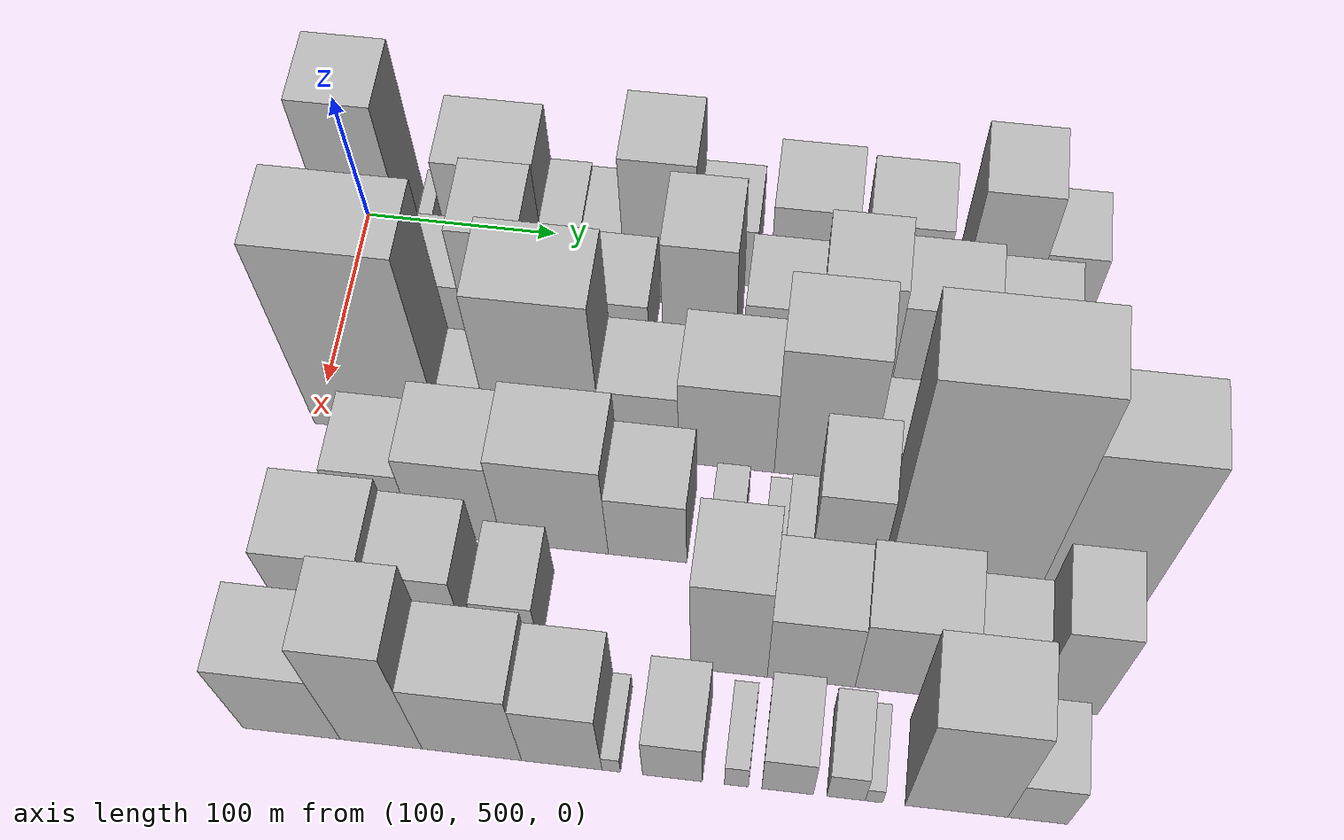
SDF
<sdf version="1.6">
 <world name="default">
  <model name="building_38">
   <static>1</static>
   <pose>100.0000 505.5566 0 0.000000 0.000000 0.000000</pose>
   <link name="link">
    <pose>0 0 61.50 0 0 0</pose>
    <collision name="collision"><geometry><box><size>40.0000 40.6864 123.0000</size></box></geometry></collision>
    <visual name="visual">
     <cast_shadows>0</cast_shadows>
     <geometry><box><size>40.0000 40.6864 123.0000</size></box></geometry>
     <material>
      <script>
       <uri>model://HANNAS_wall/materials/scripts</uri>
       <uri>model://HANNAS_wall/materials/textures</uri>
       <name>vrc/HANNAS_wall</name>
      </script>
     </material>
    </visual>
   </link>
  </model>
  <model name="building_39">
   <static>1</static>
   <pose>100.0000 534.6174 0 0.000000 0.000000 0.000000</pose>
   <link name="link">
    <pose>0 0 9.00 0 0 0</pose>
    <collision name="collision"><geometry><box><size>40.0000 7.4353 18.0000</size></box></geometry></collision>
    <visual name="visual">
     <cast_shadows>0</cast_shadows>
     <geometry><box><size>40.0000 7.4353 18.0000</size></box></geometry>
     <material>
      <script>
       <uri>model://HANNAS_wall/materials/scripts</uri>
       <uri>model://HANNAS_wall/materials/textures</uri>
       <name>vrc/HANNAS_wall</name>
      </script>
     </material>
    </visual>
   </link>
  </model>
  <model name="building_40">
   <static>1</static>
   <pose>100.0000 572.8481 0 0.000000 0.000000 0.000000</pose>
   <link name="link">
    <pose>0 0 42.00 0 0 0</pose>
    <collision name="collision"><geometry><box><size>40.0000 49.0260 84.0000</size></box></geometry></collision>
    <visual name="visual">
     <cast_shadows>0</cast_shadows>
     <geometry><box><size>40.0000 49.0260 84.0000</size></box></geometry>
     <material>
      <script>
       <uri>model://HANNAS_wall/materials/scripts</uri>
       <uri>model://HANNAS_wall/materials/textures</uri>
       <name>vrc/HANNAS_wall</name>
      </script>
     </material>
    </visual>
   </link>
  </model>
  <model name="building_41">
   <static>1</static>
   <pose>100.0000 608.1299 0 0.000000 0.000000 0.000000</pose>
   <link name="link">
    <pose>0 0 19.50 0 0 0</pose>
    <collision name="collision"><geometry><box><size>40.0000 21.5375 39.0000</size></box></geometry></collision>
    <visual name="visual">
     <cast_shadows>0</cast_shadows>
     <geometry><box><size>40.0000 21.5375 39.0000</size></box></geometry>
     <material>
      <script>
       <uri>model://HANNAS_wall/materials/scripts</uri>
       <uri>model://HANNAS_wall/materials/textures</uri>
       <name>vrc/HANNAS_wall</name>
      </script>
     </material>
    </visual>
   </link>
  </model>
  <model name="building_42">
   <static>1</static>
   <pose>100.0000 629.2807 0 0.000000 0.000000 0.000000</pose>
   <link name="link">
    <pose>0 0 18.00 0 0 0</pose>
    <collision name="collision"><geometry><box><size>40.0000 20.7642 36.0000</size></box></geometry></collision>
    <visual name="visual">
     <cast_shadows>0</cast_shadows>
     <geometry><box><size>40.0000 20.7642 36.0000</size></box></geometry>
     <material>
      <script>
       <uri>model://HANNAS_wall/materials/scripts</uri>
       <uri>model://HANNAS_wall/materials/textures</uri>
       <name>vrc/HANNAS_wall</name>
      </script>
     </material>
    </visual>
   </link>
  </model>
  <model name="building_43">
   <static>1</static>
   <pose>100.0000 658.6435 0 0.000000 0.000000 0.000000</pose>
   <link name="link">
    <pose>0 0 51.00 0 0 0</pose>
    <collision name="collision"><geometry><box><size>40.0000 37.9613 102.0000</size></box></geometry></collision>
    <visual name="visual">
     <cast_shadows>0</cast_shadows>
     <geometry><box><size>40.0000 37.9613 102.0000</size></box></geometry>
     <material>
      <script>
       <uri>model://HANNAS_wall/materials/scripts</uri>
       <uri>model://HANNAS_wall/materials/textures</uri>
       <name>vrc/HANNAS_wall</name>
      </script>
     </material>
    </visual>
   </link>
  </model>
  <model name="building_44">
   <static>1</static>
   <pose>100.0000 692.8332 0 0.000000 0.000000 0.000000</pose>
   <link name="link">
    <pose>0 0 25.50 0 0 0</pose>
    <collision name="collision"><geometry><box><size>40.0000 30.4181 51.0000</size></box></geometry></collision>
    <visual name="visual">
     <cast_shadows>0</cast_shadows>
     <geometry><box><size>40.0000 30.4181 51.0000</size></box></geometry>
     <material>
      <script>
       <uri>model://HANNAS_wall/materials/scripts</uri>
       <uri>model://HANNAS_wall/materials/textures</uri>
       <name>vrc/HANNAS_wall</name>
      </script>
     </material>
    </visual>
   </link>
  </model>
  <model name="building_45">
   <static>1</static>
   <pose>100.0000 735.8056 0 0.000000 0.000000 0.000000</pose>
   <link name="link">
    <pose>0 0 37.50 0 0 0</pose>
    <collision name="collision"><geometry><box><size>40.0000 41.5267 75.0000</size></box></geometry></collision>
    <visual name="visual">
     <cast_shadows>0</cast_shadows>
     <geometry><box><size>40.0000 41.5267 75.0000</size></box></geometry>
     <material>
      <script>
       <uri>model://HANNAS_wall/materials/scripts</uri>
       <uri>model://HANNAS_wall/materials/textures</uri>
       <name>vrc/HANNAS_wall</name>
      </script>
     </material>
    </visual>
   </link>
  </model>
  <model name="building_46">
   <static>1</static>
   <pose>100.0000 781.8442 0 0.000000 0.000000 0.000000</pose>
   <link name="link">
    <pose>0 0 34.50 0 0 0</pose>
    <collision name="collision"><geometry><box><size>40.0000 40.5506 69.0000</size></box></geometry></collision>
    <visual name="visual">
     <cast_shadows>0</cast_shadows>
     <geometry><box><size>40.0000 40.5506 69.0000</size></box></geometry>
     <material>
      <script>
       <uri>model://HANNAS_wall/materials/scripts</uri>
       <uri>model://HANNAS_wall/materials/textures</uri>
       <name>vrc/HANNAS_wall</name>
      </script>
     </material>
    </visual>
   </link>
  </model>
  <model name="building_47">
   <static>1</static>
   <pose>100.0000 830.5040 0 0.000000 0.000000 0.000000</pose>
   <link name="link">
    <pose>0 0 52.50 0 0 0</pose>
    <collision name="collision"><geometry><box><size>40.0000 36.7689 105.0000</size></box></geometry></collision>
    <visual name="visual">
     <cast_shadows>0</cast_shadows>
     <geometry><box><size>40.0000 36.7689 105.0000</size></box></geometry>
     <material>
      <script>
       <uri>model://HANNAS_wall/materials/scripts</uri>
       <uri>model://HANNAS_wall/materials/textures</uri>
       <name>vrc/HANNAS_wall</name>
      </script>
     </material>
    </visual>
   </link>
  </model>
  <model name="building_48">
   <static>1</static>
   <pose>100.0000 863.8424 0 0.000000 0.000000 0.000000</pose>
   <link name="link">
    <pose>0 0 28.50 0 0 0</pose>
    <collision name="collision"><geometry><box><size>40.0000 29.9080 57.0000</size></box></geometry></collision>
    <visual name="visual">
     <cast_shadows>0</cast_shadows>
     <geometry><box><size>40.0000 29.9080 57.0000</size></box></geometry>
     <material>
      <script>
       <uri>model://HANNAS_wall/materials/scripts</uri>
       <uri>model://HANNAS_wall/materials/textures</uri>
       <name>vrc/HANNAS_wall</name>
      </script>
     </material>
    </visual>
   </link>
  </model>
  <model name="building_91">
   <static>1</static>
   <pose>152.0000 523.9615 0 0.000000 0.000000 0.000000</pose>
   <link name="link">
    <pose>0 0 22.50 0 0 0</pose>
    <collision name="collision"><geometry><box><size>40.0000 24.2843 45.0000</size></box></geometry></collision>
    <visual name="visual">
     <cast_shadows>0</cast_shadows>
     <geometry><box><size>40.0000 24.2843 45.0000</size></box></geometry>
     <material>
      <script>
       <uri>model://HANNAS_wall/materials/scripts</uri>
       <uri>model://HANNAS_wall/materials/textures</uri>
       <name>vrc/HANNAS_wall</name>
      </script>
     </material>
    </visual>
   </link>
  </model>
  <model name="building_92">
   <static>1</static>
   <pose>152.0000 551.9967 0 0.000000 0.000000 0.000000</pose>
   <link name="link">
    <pose>0 0 28.50 0 0 0</pose>
    <collision name="collision"><geometry><box><size>40.0000 31.7861 57.0000</size></box></geometry></collision>
    <visual name="visual">
     <cast_shadows>0</cast_shadows>
     <geometry><box><size>40.0000 31.7861 57.0000</size></box></geometry>
     <material>
      <script>
       <uri>model://HANNAS_wall/materials/scripts</uri>
       <uri>model://HANNAS_wall/materials/textures</uri>
       <name>vrc/HANNAS_wall</name>
      </script>
     </material>
    </visual>
   </link>
  </model>
  <model name="building_93">
   <static>1</static>
   <pose>152.0000 584.6896 0 0.000000 0.000000 0.000000</pose>
   <link name="link">
    <pose>0 0 54.00 0 0 0</pose>
    <collision name="collision"><geometry><box><size>40.0000 33.5998 108.0000</size></box></geometry></collision>
    <visual name="visual">
     <cast_shadows>0</cast_shadows>
     <geometry><box><size>40.0000 33.5998 108.0000</size></box></geometry>
     <material>
      <script>
       <uri>model://HANNAS_wall/materials/scripts</uri>
       <uri>model://HANNAS_wall/materials/textures</uri>
       <name>vrc/HANNAS_wall</name>
      </script>
     </material>
    </visual>
   </link>
  </model>
  <model name="building_94">
   <static>1</static>
   <pose>152.0000 616.1269 0 0.000000 0.000000 0.000000</pose>
   <link name="link">
    <pose>0 0 25.50 0 0 0</pose>
    <collision name="collision"><geometry><box><size>40.0000 29.2748 51.0000</size></box></geometry></collision>
    <visual name="visual">
     <cast_shadows>0</cast_shadows>
     <geometry><box><size>40.0000 29.2748 51.0000</size></box></geometry>
     <material>
      <script>
       <uri>model://HANNAS_wall/materials/scripts</uri>
       <uri>model://HANNAS_wall/materials/textures</uri>
       <name>vrc/HANNAS_wall</name>
      </script>
     </material>
    </visual>
   </link>
  </model>
  <model name="building_95">
   <static>1</static>
   <pose>152.0000 645.3666 0 0.000000 0.000000 0.000000</pose>
   <link name="link">
    <pose>0 0 28.50 0 0 0</pose>
    <collision name="collision"><geometry><box><size>40.0000 29.2047 57.0000</size></box></geometry></collision>
    <visual name="visual">
     <cast_shadows>0</cast_shadows>
     <geometry><box><size>40.0000 29.2047 57.0000</size></box></geometry>
     <material>
      <script>
       <uri>model://HANNAS_wall/materials/scripts</uri>
       <uri>model://HANNAS_wall/materials/textures</uri>
       <name>vrc/HANNAS_wall</name>
      </script>
     </material>
    </visual>
   </link>
  </model>
  <model name="building_96">
   <static>1</static>
   <pose>152.0000 684.8823 0 0.000000 0.000000 0.000000</pose>
   <link name="link">
    <pose>0 0 57.00 0 0 0</pose>
    <collision name="collision"><geometry><box><size>40.0000 35.8268 114.0000</size></box></geometry></collision>
    <visual name="visual">
     <cast_shadows>0</cast_shadows>
     <geometry><box><size>40.0000 35.8268 114.0000</size></box></geometry>
     <material>
      <script>
       <uri>model://HANNAS_wall/materials/scripts</uri>
       <uri>model://HANNAS_wall/materials/textures</uri>
       <name>vrc/HANNAS_wall</name>
      </script>
     </material>
    </visual>
   </link>
  </model>
  <model name="building_97">
   <static>1</static>
   <pose>152.0000 724.7681 0 0.000000 0.000000 0.000000</pose>
   <link name="link">
    <pose>0 0 34.50 0 0 0</pose>
    <collision name="collision"><geometry><box><size>40.0000 35.9448 69.0000</size></box></geometry></collision>
    <visual name="visual">
     <cast_shadows>0</cast_shadows>
     <geometry><box><size>40.0000 35.9448 69.0000</size></box></geometry>
     <material>
      <script>
       <uri>model://HANNAS_wall/materials/scripts</uri>
       <uri>model://HANNAS_wall/materials/textures</uri>
       <name>vrc/HANNAS_wall</name>
      </script>
     </material>
    </visual>
   </link>
  </model>
  <model name="building_98">
   <static>1</static>
   <pose>152.0000 761.8422 0 0.000000 0.000000 0.000000</pose>
   <link name="link">
    <pose>0 0 48.00 0 0 0</pose>
    <collision name="collision"><geometry><box><size>40.0000 38.2033 96.0000</size></box></geometry></collision>
    <visual name="visual">
     <cast_shadows>0</cast_shadows>
     <geometry><box><size>40.0000 38.2033 96.0000</size></box></geometry>
     <material>
      <script>
       <uri>model://HANNAS_wall/materials/scripts</uri>
       <uri>model://HANNAS_wall/materials/textures</uri>
       <name>vrc/HANNAS_wall</name>
      </script>
     </material>
    </visual>
   </link>
  </model>
  <model name="building_99">
   <static>1</static>
   <pose>152.0000 803.0215 0 0.000000 0.000000 0.000000</pose>
   <link name="link">
    <pose>0 0 40.50 0 0 0</pose>
    <collision name="collision"><geometry><box><size>40.0000 44.1552 81.0000</size></box></geometry></collision>
    <visual name="visual">
     <cast_shadows>0</cast_shadows>
     <geometry><box><size>40.0000 44.1552 81.0000</size></box></geometry>
     <material>
      <script>
       <uri>model://HANNAS_wall/materials/scripts</uri>
       <uri>model://HANNAS_wall/materials/textures</uri>
       <name>vrc/HANNAS_wall</name>
      </script>
     </material>
    </visual>
   </link>
  </model>
  <model name="building_100">
   <static>1</static>
   <pose>152.0000 844.2013 0 0.000000 0.000000 0.000000</pose>
   <link name="link">
    <pose>0 0 36.00 0 0 0</pose>
    <collision name="collision"><geometry><box><size>40.0000 38.2045 72.0000</size></box></geometry></collision>
    <visual name="visual">
     <cast_shadows>0</cast_shadows>
     <geometry><box><size>40.0000 38.2045 72.0000</size></box></geometry>
     <material>
      <script>
       <uri>model://HANNAS_wall/materials/scripts</uri>
       <uri>model://HANNAS_wall/materials/textures</uri>
       <name>vrc/HANNAS_wall</name>
      </script>
     </material>
    </visual>
   </link>
  </model>
  <model name="building_145">
   <static>1</static>
   <pose>204.0000 531.2300 0 0.000000 0.000000 0.000000</pose>
   <link name="link">
    <pose>0 0 82.50 0 0 0</pose>
    <collision name="collision"><geometry><box><size>40.0000 64.6209 165.0000</size></box></geometry></collision>
    <visual name="visual">
     <cast_shadows>0</cast_shadows>
     <geometry><box><size>40.0000 64.6209 165.0000</size></box></geometry>
     <material>
      <script>
       <uri>model://HANNAS_wall/materials/scripts</uri>
       <uri>model://HANNAS_wall/materials/textures</uri>
       <name>vrc/HANNAS_wall</name>
      </script>
     </material>
    </visual>
   </link>
  </model>
  <model name="building_146">
   <static>1</static>
   <pose>204.0000 573.9318 0 0.000000 0.000000 0.000000</pose>
   <link name="link">
    <pose>0 0 19.50 0 0 0</pose>
    <collision name="collision"><geometry><box><size>40.0000 20.7826 39.0000</size></box></geometry></collision>
    <visual name="visual">
     <cast_shadows>0</cast_shadows>
     <geometry><box><size>40.0000 20.7826 39.0000</size></box></geometry>
     <material>
      <script>
       <uri>model://HANNAS_wall/materials/scripts</uri>
       <uri>model://HANNAS_wall/materials/textures</uri>
       <name>vrc/HANNAS_wall</name>
      </script>
     </material>
    </visual>
   </link>
  </model>
  <model name="building_147">
   <static>1</static>
   <pose>204.0000 615.8243 0 0.000000 0.000000 0.000000</pose>
   <link name="link">
    <pose>0 0 70.50 0 0 0</pose>
    <collision name="collision"><geometry><box><size>40.0000 55.0024 141.0000</size></box></geometry></collision>
    <visual name="visual">
     <cast_shadows>0</cast_shadows>
     <geometry><box><size>40.0000 55.0024 141.0000</size></box></geometry>
     <material>
      <script>
       <uri>model://HANNAS_wall/materials/scripts</uri>
       <uri>model://HANNAS_wall/materials/textures</uri>
       <name>vrc/HANNAS_wall</name>
      </script>
     </material>
    </visual>
   </link>
  </model>
  <model name="building_148">
   <static>1</static>
   <pose>204.0000 662.1297 0 0.000000 0.000000 0.000000</pose>
   <link name="link">
    <pose>0 0 33.00 0 0 0</pose>
    <collision name="collision"><geometry><box><size>40.0000 37.6084 66.0000</size></box></geometry></collision>
    <visual name="visual">
     <cast_shadows>0</cast_shadows>
     <geometry><box><size>40.0000 37.6084 66.0000</size></box></geometry>
     <material>
      <script>
       <uri>model://HANNAS_wall/materials/scripts</uri>
       <uri>model://HANNAS_wall/materials/textures</uri>
       <name>vrc/HANNAS_wall</name>
      </script>
     </material>
    </visual>
   </link>
  </model>
  <model name="building_149">
   <static>1</static>
   <pose>204.0000 704.2894 0 0.000000 0.000000 0.000000</pose>
   <link name="link">
    <pose>0 0 40.50 0 0 0</pose>
    <collision name="collision"><geometry><box><size>40.0000 46.7109 81.0000</size></box></geometry></collision>
    <visual name="visual">
     <cast_shadows>0</cast_shadows>
     <geometry><box><size>40.0000 46.7109 81.0000</size></box></geometry>
     <material>
      <script>
       <uri>model://HANNAS_wall/materials/scripts</uri>
       <uri>model://HANNAS_wall/materials/textures</uri>
       <name>vrc/HANNAS_wall</name>
      </script>
     </material>
    </visual>
   </link>
  </model>
  <model name="building_150">
   <static>1</static>
   <pose>204.0000 751.0916 0 0.000000 0.000000 0.000000</pose>
   <link name="link">
    <pose>0 0 61.50 0 0 0</pose>
    <collision name="collision"><geometry><box><size>40.0000 46.8937 123.0000</size></box></geometry></collision>
    <visual name="visual">
     <cast_shadows>0</cast_shadows>
     <geometry><box><size>40.0000 46.8937 123.0000</size></box></geometry>
     <material>
      <script>
       <uri>model://HANNAS_wall/materials/scripts</uri>
       <uri>model://HANNAS_wall/materials/textures</uri>
       <name>vrc/HANNAS_wall</name>
      </script>
     </material>
    </visual>
   </link>
  </model>
  <model name="building_151">
   <static>1</static>
   <pose>204.0000 783.8099 0 0.000000 0.000000 0.000000</pose>
   <link name="link">
    <pose>0 0 18.00 0 0 0</pose>
    <collision name="collision"><geometry><box><size>40.0000 18.5428 36.0000</size></box></geometry></collision>
    <visual name="visual">
     <cast_shadows>0</cast_shadows>
     <geometry><box><size>40.0000 18.5428 36.0000</size></box></geometry>
     <material>
      <script>
       <uri>model://HANNAS_wall/materials/scripts</uri>
       <uri>model://HANNAS_wall/materials/textures</uri>
       <name>vrc/HANNAS_wall</name>
      </script>
     </material>
    </visual>
   </link>
  </model>
  <model name="building_152">
   <static>1</static>
   <pose>204.0000 814.6638 0 0.000000 0.000000 0.000000</pose>
   <link name="link">
    <pose>0 0 37.50 0 0 0</pose>
    <collision name="collision"><geometry><box><size>40.0000 43.1650 75.0000</size></box></geometry></collision>
    <visual name="visual">
     <cast_shadows>0</cast_shadows>
     <geometry><box><size>40.0000 43.1650 75.0000</size></box></geometry>
     <material>
      <script>
       <uri>model://HANNAS_wall/materials/scripts</uri>
       <uri>model://HANNAS_wall/materials/textures</uri>
       <name>vrc/HANNAS_wall</name>
      </script>
     </material>
    </visual>
   </link>
  </model>
  <model name="building_153">
   <static>1</static>
   <pose>204.0000 856.3323 0 0.000000 0.000000 0.000000</pose>
   <link name="link">
    <pose>0 0 54.00 0 0 0</pose>
    <collision name="collision"><geometry><box><size>40.0000 40.1720 108.0000</size></box></geometry></collision>
    <visual name="visual">
     <cast_shadows>0</cast_shadows>
     <geometry><box><size>40.0000 40.1720 108.0000</size></box></geometry>
     <material>
      <script>
       <uri>model://HANNAS_wall/materials/scripts</uri>
       <uri>model://HANNAS_wall/materials/textures</uri>
       <name>vrc/HANNAS_wall</name>
      </script>
     </material>
    </visual>
   </link>
  </model>
  <model name="building_191">
   <static>1</static>
   <pose>256.0000 541.9744 0 0.000000 0.000000 0.000000</pose>
   <link name="link">
    <pose>0 0 31.50 0 0 0</pose>
    <collision name="collision"><geometry><box><size>40.0000 35.4928 63.0000</size></box></geometry></collision>
    <visual name="visual">
     <cast_shadows>0</cast_shadows>
     <geometry><box><size>40.0000 35.4928 63.0000</size></box></geometry>
     <material>
      <script>
       <uri>model://HANNAS_wall/materials/scripts</uri>
       <uri>model://HANNAS_wall/materials/textures</uri>
       <name>vrc/HANNAS_wall</name>
      </script>
     </material>
    </visual>
   </link>
  </model>
  <model name="building_192">
   <static>1</static>
   <pose>256.0000 580.8543 0 0.000000 0.000000 0.000000</pose>
   <link name="link">
    <pose>0 0 40.50 0 0 0</pose>
    <collision name="collision"><geometry><box><size>40.0000 42.2671 81.0000</size></box></geometry></collision>
    <visual name="visual">
     <cast_shadows>0</cast_shadows>
     <geometry><box><size>40.0000 42.2671 81.0000</size></box></geometry>
     <material>
      <script>
       <uri>model://HANNAS_wall/materials/scripts</uri>
       <uri>model://HANNAS_wall/materials/textures</uri>
       <name>vrc/HANNAS_wall</name>
      </script>
     </material>
    </visual>
   </link>
  </model>
  <model name="building_193">
   <static>1</static>
   <pose>256.0000 627.6849 0 0.000000 0.000000 0.000000</pose>
   <link name="link">
    <pose>0 0 45.00 0 0 0</pose>
    <collision name="collision"><geometry><box><size>40.0000 51.3941 90.0000</size></box></geometry></collision>
    <visual name="visual">
     <cast_shadows>0</cast_shadows>
     <geometry><box><size>40.0000 51.3941 90.0000</size></box></geometry>
     <material>
      <script>
       <uri>model://HANNAS_wall/materials/scripts</uri>
       <uri>model://HANNAS_wall/materials/textures</uri>
       <name>vrc/HANNAS_wall</name>
      </script>
     </material>
    </visual>
   </link>
  </model>
  <model name="building_194">
   <static>1</static>
   <pose>256.0000 672.2578 0 0.000000 0.000000 0.000000</pose>
   <link name="link">
    <pose>0 0 31.50 0 0 0</pose>
    <collision name="collision"><geometry><box><size>40.0000 37.7517 63.0000</size></box></geometry></collision>
    <visual name="visual">
     <cast_shadows>0</cast_shadows>
     <geometry><box><size>40.0000 37.7517 63.0000</size></box></geometry>
     <material>
      <script>
       <uri>model://HANNAS_wall/materials/scripts</uri>
       <uri>model://HANNAS_wall/materials/textures</uri>
       <name>vrc/HANNAS_wall</name>
      </script>
     </material>
    </visual>
   </link>
  </model>
  <model name="building_195">
   <static>1</static>
   <pose>256.0000 709.0108 0 0.000000 0.000000 0.000000</pose>
   <link name="link">
    <pose>0 0 15.00 0 0 0</pose>
    <collision name="collision"><geometry><box><size>40.0000 15.7543 30.0000</size></box></geometry></collision>
    <visual name="visual">
     <cast_shadows>0</cast_shadows>
     <geometry><box><size>40.0000 15.7543 30.0000</size></box></geometry>
     <material>
      <script>
       <uri>model://HANNAS_wall/materials/scripts</uri>
       <uri>model://HANNAS_wall/materials/textures</uri>
       <name>vrc/HANNAS_wall</name>
      </script>
     </material>
    </visual>
   </link>
  </model>
  <model name="building_196">
   <static>1</static>
   <pose>256.0000 731.9410 0 0.000000 0.000000 0.000000</pose>
   <link name="link">
    <pose>0 0 10.50 0 0 0</pose>
    <collision name="collision"><geometry><box><size>40.0000 10.1059 21.0000</size></box></geometry></collision>
    <visual name="visual">
     <cast_shadows>0</cast_shadows>
     <geometry><box><size>40.0000 10.1059 21.0000</size></box></geometry>
     <material>
      <script>
       <uri>model://HANNAS_wall/materials/scripts</uri>
       <uri>model://HANNAS_wall/materials/textures</uri>
       <name>vrc/HANNAS_wall</name>
      </script>
     </material>
    </visual>
   </link>
  </model>
  <model name="building_197">
   <static>1</static>
   <pose>256.0000 743.4361 0 0.000000 0.000000 0.000000</pose>
   <link name="link">
    <pose>0 0 13.50 0 0 0</pose>
    <collision name="collision"><geometry><box><size>40.0000 12.8843 27.0000</size></box></geometry></collision>
    <visual name="visual">
     <cast_shadows>0</cast_shadows>
     <geometry><box><size>40.0000 12.8843 27.0000</size></box></geometry>
     <material>
      <script>
       <uri>model://HANNAS_wall/materials/scripts</uri>
       <uri>model://HANNAS_wall/materials/textures</uri>
       <name>vrc/HANNAS_wall</name>
      </script>
     </material>
    </visual>
   </link>
  </model>
  <model name="building_198">
   <static>1</static>
   <pose>256.0000 766.2232 0 0.000000 0.000000 0.000000</pose>
   <link name="link">
    <pose>0 0 46.50 0 0 0</pose>
    <collision name="collision"><geometry><box><size>40.0000 32.6898 93.0000</size></box></geometry></collision>
    <visual name="visual">
     <cast_shadows>0</cast_shadows>
     <geometry><box><size>40.0000 32.6898 93.0000</size></box></geometry>
     <material>
      <script>
       <uri>model://HANNAS_wall/materials/scripts</uri>
       <uri>model://HANNAS_wall/materials/textures</uri>
       <name>vrc/HANNAS_wall</name>
      </script>
     </material>
    </visual>
   </link>
  </model>
  <model name="building_199">
   <static>1</static>
   <pose>256.0000 820.8286 0 0.000000 0.000000 0.000000</pose>
   <link name="link">
    <pose>0 0 103.50 0 0 0</pose>
    <collision name="collision"><geometry><box><size>40.0000 70.5211 207.0000</size></box></geometry></collision>
    <visual name="visual">
     <cast_shadows>0</cast_shadows>
     <geometry><box><size>40.0000 70.5211 207.0000</size></box></geometry>
     <material>
      <script>
       <uri>model://HANNAS_wall/materials/scripts</uri>
       <uri>model://HANNAS_wall/materials/textures</uri>
       <name>vrc/HANNAS_wall</name>
      </script>
     </material>
    </visual>
   </link>
  </model>
  <model name="building_200">
   <static>1</static>
   <pose>256.0000 880.9322 0 0.000000 0.000000 0.000000</pose>
   <link name="link">
    <pose>0 0 79.50 0 0 0</pose>
    <collision name="collision"><geometry><box><size>40.0000 49.6860 159.0000</size></box></geometry></collision>
    <visual name="visual">
     <cast_shadows>0</cast_shadows>
     <geometry><box><size>40.0000 49.6860 159.0000</size></box></geometry>
     <material>
      <script>
       <uri>model://HANNAS_wall/materials/scripts</uri>
       <uri>model://HANNAS_wall/materials/textures</uri>
       <name>vrc/HANNAS_wall</name>
      </script>
     </material>
    </visual>
   </link>
  </model>
  <model name="building_242">
   <static>1</static>
   <pose>308.0000 533.1919 0 0.000000 0.000000 0.000000</pose>
   <link name="link">
    <pose>0 0 43.50 0 0 0</pose>
    <collision name="collision"><geometry><box><size>40.0000 46.4471 87.0000</size></box></geometry></collision>
    <visual name="visual">
     <cast_shadows>0</cast_shadows>
     <geometry><box><size>40.0000 46.4471 87.0000</size></box></geometry>
     <material>
      <script>
       <uri>model://HANNAS_wall/materials/scripts</uri>
       <uri>model://HANNAS_wall/materials/textures</uri>
       <name>vrc/HANNAS_wall</name>
      </script>
     </material>
    </visual>
   </link>
  </model>
  <model name="building_243">
   <static>1</static>
   <pose>308.0000 575.5809 0 0.000000 0.000000 0.000000</pose>
   <link name="link">
    <pose>0 0 37.50 0 0 0</pose>
    <collision name="collision"><geometry><box><size>40.0000 38.3309 75.0000</size></box></geometry></collision>
    <visual name="visual">
     <cast_shadows>0</cast_shadows>
     <geometry><box><size>40.0000 38.3309 75.0000</size></box></geometry>
     <material>
      <script>
       <uri>model://HANNAS_wall/materials/scripts</uri>
       <uri>model://HANNAS_wall/materials/textures</uri>
       <name>vrc/HANNAS_wall</name>
      </script>
     </material>
    </visual>
   </link>
  </model>
  <model name="building_244">
   <static>1</static>
   <pose>308.0000 614.8825 0 0.000000 0.000000 0.000000</pose>
   <link name="link">
    <pose>0 0 27.00 0 0 0</pose>
    <collision name="collision"><geometry><box><size>40.0000 28.2723 54.0000</size></box></geometry></collision>
    <visual name="visual">
     <cast_shadows>0</cast_shadows>
     <geometry><box><size>40.0000 28.2723 54.0000</size></box></geometry>
     <material>
      <script>
       <uri>model://HANNAS_wall/materials/scripts</uri>
       <uri>model://HANNAS_wall/materials/textures</uri>
       <name>vrc/HANNAS_wall</name>
      </script>
     </material>
    </visual>
   </link>
  </model>
  <model name="building_245">
   <static>1</static>
   <pose>308.0000 717.1188 0 0.000000 0.000000 0.000000</pose>
   <link name="link">
    <pose>0 0 52.50 0 0 0</pose>
    <collision name="collision"><geometry><box><size>40.0000 35.4001 105.0000</size></box></geometry></collision>
    <visual name="visual">
     <cast_shadows>0</cast_shadows>
     <geometry><box><size>40.0000 35.4001 105.0000</size></box></geometry>
     <material>
      <script>
       <uri>model://HANNAS_wall/materials/scripts</uri>
       <uri>model://HANNAS_wall/materials/textures</uri>
       <name>vrc/HANNAS_wall</name>
      </script>
     </material>
    </visual>
   </link>
  </model>
  <model name="building_246">
   <static>1</static>
   <pose>308.0000 755.1463 0 0.000000 0.000000 0.000000</pose>
   <link name="link">
    <pose>0 0 37.50 0 0 0</pose>
    <collision name="collision"><geometry><box><size>40.0000 40.6551 75.0000</size></box></geometry></collision>
    <visual name="visual">
     <cast_shadows>0</cast_shadows>
     <geometry><box><size>40.0000 40.6551 75.0000</size></box></geometry>
     <material>
      <script>
       <uri>model://HANNAS_wall/materials/scripts</uri>
       <uri>model://HANNAS_wall/materials/textures</uri>
       <name>vrc/HANNAS_wall</name>
      </script>
     </material>
    </visual>
   </link>
  </model>
  <model name="building_247">
   <static>1</static>
   <pose>308.0000 799.2355 0 0.000000 0.000000 0.000000</pose>
   <link name="link">
    <pose>0 0 40.50 0 0 0</pose>
    <collision name="collision"><geometry><box><size>40.0000 47.5233 81.0000</size></box></geometry></collision>
    <visual name="visual">
     <cast_shadows>0</cast_shadows>
     <geometry><box><size>40.0000 47.5233 81.0000</size></box></geometry>
     <material>
      <script>
       <uri>model://HANNAS_wall/materials/scripts</uri>
       <uri>model://HANNAS_wall/materials/textures</uri>
       <name>vrc/HANNAS_wall</name>
      </script>
     </material>
    </visual>
   </link>
  </model>
  <model name="building_248">
   <static>1</static>
   <pose>308.0000 840.9904 0 0.000000 0.000000 0.000000</pose>
   <link name="link">
    <pose>0 0 28.50 0 0 0</pose>
    <collision name="collision"><geometry><box><size>40.0000 29.9863 57.0000</size></box></geometry></collision>
    <visual name="visual">
     <cast_shadows>0</cast_shadows>
     <geometry><box><size>40.0000 29.9863 57.0000</size></box></geometry>
     <material>
      <script>
       <uri>model://HANNAS_wall/materials/scripts</uri>
       <uri>model://HANNAS_wall/materials/textures</uri>
       <name>vrc/HANNAS_wall</name>
      </script>
     </material>
    </visual>
   </link>
  </model>
  <model name="building_249">
   <static>1</static>
   <pose>308.0000 871.2927 0 0.000000 0.000000 0.000000</pose>
   <link name="link">
    <pose>0 0 49.50 0 0 0</pose>
    <collision name="collision"><geometry><box><size>40.0000 30.6183 99.0000</size></box></geometry></collision>
    <visual name="visual">
     <cast_shadows>0</cast_shadows>
     <geometry><box><size>40.0000 30.6183 99.0000</size></box></geometry>
     <material>
      <script>
       <uri>model://HANNAS_wall/materials/scripts</uri>
       <uri>model://HANNAS_wall/materials/textures</uri>
       <name>vrc/HANNAS_wall</name>
      </script>
     </material>
    </visual>
   </link>
  </model>
  <model name="building_288">
   <static>1</static>
   <pose>360.0000 522.9206 0 0.000000 0.000000 0.000000</pose>
   <link name="link">
    <pose>0 0 40.50 0 0 0</pose>
    <collision name="collision"><geometry><box><size>40.0000 45.0576 81.0000</size></box></geometry></collision>
    <visual name="visual">
     <cast_shadows>0</cast_shadows>
     <geometry><box><size>40.0000 45.0576 81.0000</size></box></geometry>
     <material>
      <script>
       <uri>model://HANNAS_wall/materials/scripts</uri>
       <uri>model://HANNAS_wall/materials/textures</uri>
       <name>vrc/HANNAS_wall</name>
      </script>
     </material>
    </visual>
   </link>
  </model>
  <model name="building_289">
   <static>1</static>
   <pose>360.0000 564.2878 0 0.000000 0.000000 0.000000</pose>
   <link name="link">
    <pose>0 0 61.50 0 0 0</pose>
    <collision name="collision"><geometry><box><size>40.0000 37.6769 123.0000</size></box></geometry></collision>
    <visual name="visual">
     <cast_shadows>0</cast_shadows>
     <geometry><box><size>40.0000 37.6769 123.0000</size></box></geometry>
     <material>
      <script>
       <uri>model://HANNAS_wall/materials/scripts</uri>
       <uri>model://HANNAS_wall/materials/textures</uri>
       <name>vrc/HANNAS_wall</name>
      </script>
     </material>
    </visual>
   </link>
  </model>
  <model name="building_290">
   <static>1</static>
   <pose>360.0000 605.9475 0 0.000000 0.000000 0.000000</pose>
   <link name="link">
    <pose>0 0 42.00 0 0 0</pose>
    <collision name="collision"><geometry><box><size>40.0000 45.6424 84.0000</size></box></geometry></collision>
    <visual name="visual">
     <cast_shadows>0</cast_shadows>
     <geometry><box><size>40.0000 45.6424 84.0000</size></box></geometry>
     <material>
      <script>
       <uri>model://HANNAS_wall/materials/scripts</uri>
       <uri>model://HANNAS_wall/materials/textures</uri>
       <name>vrc/HANNAS_wall</name>
      </script>
     </material>
    </visual>
   </link>
  </model>
  <model name="building_291">
   <static>1</static>
   <pose>360.0000 647.0767 0 0.000000 0.000000 0.000000</pose>
   <link name="link">
    <pose>0 0 36.00 0 0 0</pose>
    <collision name="collision"><geometry><box><size>40.0000 36.6161 72.0000</size></box></geometry></collision>
    <visual name="visual">
     <cast_shadows>0</cast_shadows>
     <geometry><box><size>40.0000 36.6161 72.0000</size></box></geometry>
     <material>
      <script>
       <uri>model://HANNAS_wall/materials/scripts</uri>
       <uri>model://HANNAS_wall/materials/textures</uri>
       <name>vrc/HANNAS_wall</name>
      </script>
     </material>
    </visual>
   </link>
  </model>
  <model name="building_292">
   <static>1</static>
   <pose>360.0000 669.5942 0 0.000000 0.000000 0.000000</pose>
   <link name="link">
    <pose>0 0 9.00 0 0 0</pose>
    <collision name="collision"><geometry><box><size>40.0000 8.4188 18.0000</size></box></geometry></collision>
    <visual name="visual">
     <cast_shadows>0</cast_shadows>
     <geometry><box><size>40.0000 8.4188 18.0000</size></box></geometry>
     <material>
      <script>
       <uri>model://HANNAS_wall/materials/scripts</uri>
       <uri>model://HANNAS_wall/materials/textures</uri>
       <name>vrc/HANNAS_wall</name>
      </script>
     </material>
    </visual>
   </link>
  </model>
  <model name="building_293">
   <static>1</static>
   <pose>360.0000 697.3313 0 0.000000 0.000000 0.000000</pose>
   <link name="link">
    <pose>0 0 24.00 0 0 0</pose>
    <collision name="collision"><geometry><box><size>40.0000 27.0555 48.0000</size></box></geometry></collision>
    <visual name="visual">
     <cast_shadows>0</cast_shadows>
     <geometry><box><size>40.0000 27.0555 48.0000</size></box></geometry>
     <material>
      <script>
       <uri>model://HANNAS_wall/materials/scripts</uri>
       <uri>model://HANNAS_wall/materials/textures</uri>
       <name>vrc/HANNAS_wall</name>
      </script>
     </material>
    </visual>
   </link>
  </model>
  <model name="building_294">
   <static>1</static>
   <pose>360.0000 726.2751 0 0.000000 0.000000 0.000000</pose>
   <link name="link">
    <pose>0 0 13.50 0 0 0</pose>
    <collision name="collision"><geometry><box><size>40.0000 10.8320 27.0000</size></box></geometry></collision>
    <visual name="visual">
     <cast_shadows>0</cast_shadows>
     <geometry><box><size>40.0000 10.8320 27.0000</size></box></geometry>
     <material>
      <script>
       <uri>model://HANNAS_wall/materials/scripts</uri>
       <uri>model://HANNAS_wall/materials/textures</uri>
       <name>vrc/HANNAS_wall</name>
      </script>
     </material>
    </visual>
   </link>
  </model>
  <model name="building_295">
   <static>1</static>
   <pose>360.0000 749.3023 0 0.000000 0.000000 0.000000</pose>
   <link name="link">
    <pose>0 0 22.50 0 0 0</pose>
    <collision name="collision"><geometry><box><size>40.0000 23.2226 45.0000</size></box></geometry></collision>
    <visual name="visual">
     <cast_shadows>0</cast_shadows>
     <geometry><box><size>40.0000 23.2226 45.0000</size></box></geometry>
     <material>
      <script>
       <uri>model://HANNAS_wall/materials/scripts</uri>
       <uri>model://HANNAS_wall/materials/textures</uri>
       <name>vrc/HANNAS_wall</name>
      </script>
     </material>
    </visual>
   </link>
  </model>
  <model name="building_296">
   <static>1</static>
   <pose>360.0000 775.5511 0 0.000000 0.000000 0.000000</pose>
   <link name="link">
    <pose>0 0 16.50 0 0 0</pose>
    <collision name="collision"><geometry><box><size>40.0000 17.2750 33.0000</size></box></geometry></collision>
    <visual name="visual">
     <cast_shadows>0</cast_shadows>
     <geometry><box><size>40.0000 17.2750 33.0000</size></box></geometry>
     <material>
      <script>
       <uri>model://HANNAS_wall/materials/scripts</uri>
       <uri>model://HANNAS_wall/materials/textures</uri>
       <name>vrc/HANNAS_wall</name>
      </script>
     </material>
    </visual>
   </link>
  </model>
  <model name="building_297">
   <static>1</static>
   <pose>360.0000 788.0808 0 0.000000 0.000000 0.000000</pose>
   <link name="link">
    <pose>0 0 9.00 0 0 0</pose>
    <collision name="collision"><geometry><box><size>40.0000 7.7844 18.0000</size></box></geometry></collision>
    <visual name="visual">
     <cast_shadows>0</cast_shadows>
     <geometry><box><size>40.0000 7.7844 18.0000</size></box></geometry>
     <material>
      <script>
       <uri>model://HANNAS_wall/materials/scripts</uri>
       <uri>model://HANNAS_wall/materials/textures</uri>
       <name>vrc/HANNAS_wall</name>
      </script>
     </material>
    </visual>
   </link>
  </model>
  <model name="building_298">
   <static>1</static>
   <pose>360.0000 824.8594 0 0.000000 0.000000 0.000000</pose>
   <link name="link">
    <pose>0 0 60.00 0 0 0</pose>
    <collision name="collision"><geometry><box><size>40.0000 45.7726 120.0000</size></box></geometry></collision>
    <visual name="visual">
     <cast_shadows>0</cast_shadows>
     <geometry><box><size>40.0000 45.7726 120.0000</size></box></geometry>
     <material>
      <script>
       <uri>model://HANNAS_wall/materials/scripts</uri>
       <uri>model://HANNAS_wall/materials/textures</uri>
       <name>vrc/HANNAS_wall</name>
      </script>
     </material>
    </visual>
   </link>
  </model>
  <model name="building_299">
   <static>1</static>
   <pose>360.0000 861.0049 0 0.000000 0.000000 0.000000</pose>
   <link name="link">
    <pose>0 0 25.50 0 0 0</pose>
    <collision name="collision"><geometry><box><size>40.0000 26.5186 51.0000</size></box></geometry></collision>
    <visual name="visual">
     <cast_shadows>0</cast_shadows>
     <geometry><box><size>40.0000 26.5186 51.0000</size></box></geometry>
     <material>
      <script>
       <uri>model://HANNAS_wall/materials/scripts</uri>
       <uri>model://HANNAS_wall/materials/textures</uri>
       <name>vrc/HANNAS_wall</name>
      </script>
     </material>
    </visual>
   </link>
  </model>
 </world>
</sdf>
